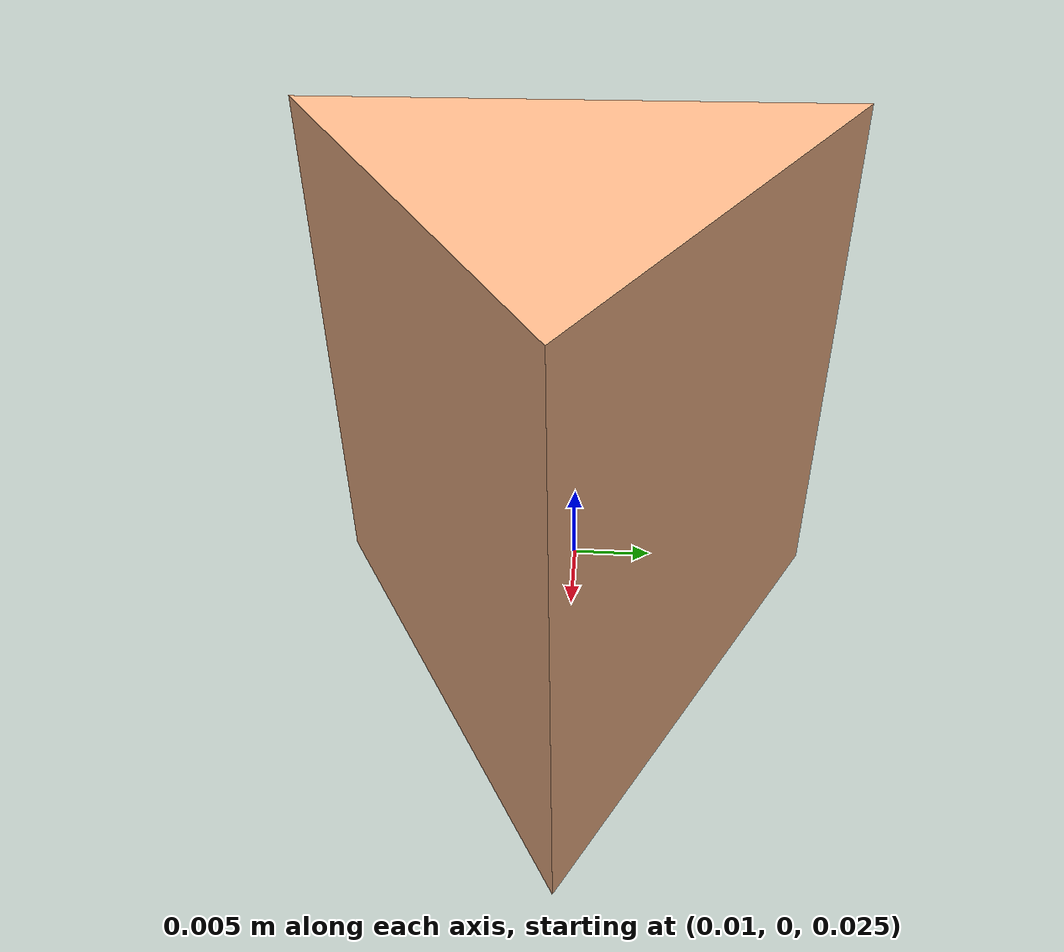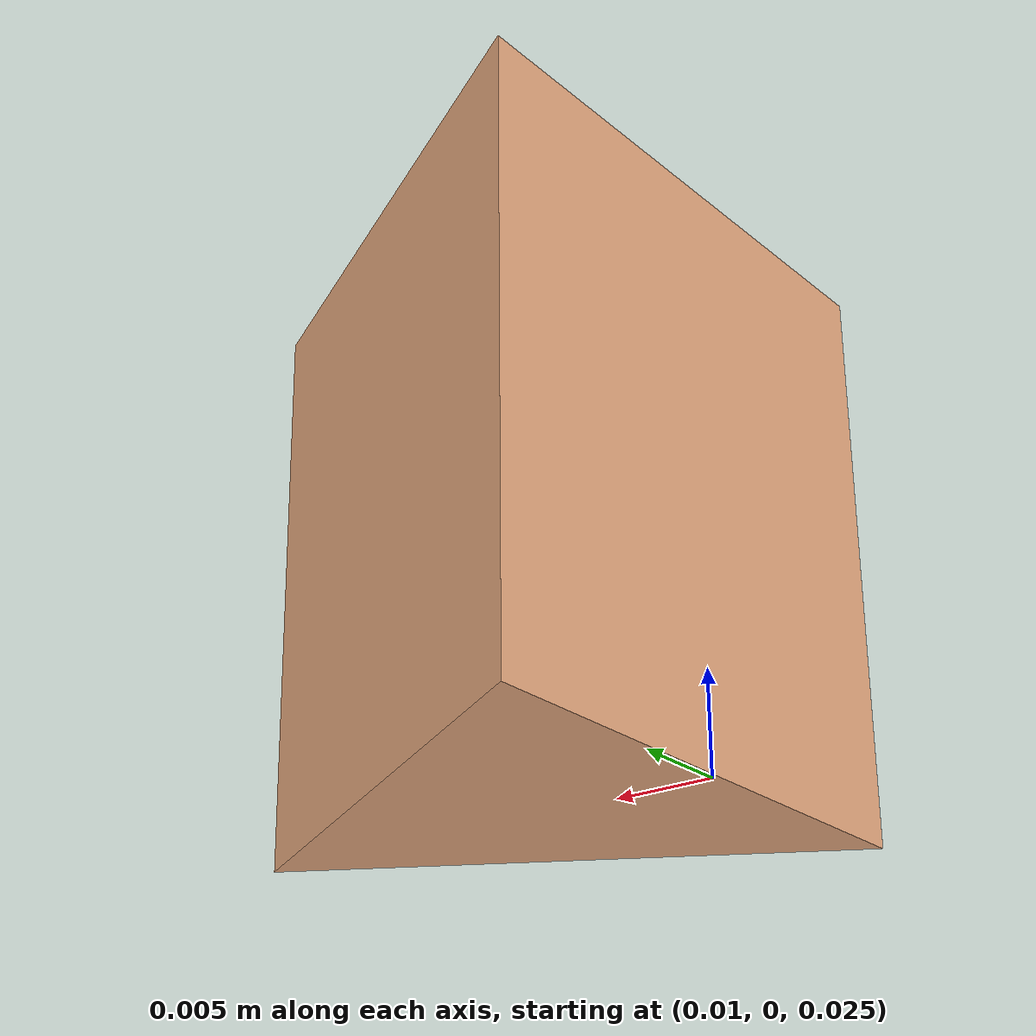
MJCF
<mujoco model="montessori_object_2">
    <compiler angle="radian" meshdir="." autolimits="true" inertiafromgeom="true"/>
    <asset>
        <mesh name="MontessoriObject_002" file="stl/MontessoriObject_002.stl" />
    </asset>
    <default>
        <default class="montessori_object_2_collision">
            <geom rgba="0.99 0.73 0.55 1.0"/>
        </default>
    </default>
    <worldbody>
        <body name="montessori_object_2" pos="0.0185 0 0.04" quat="1 0 0 0">
            <freejoint/>
            <inertial mass="0.01134409662336111" pos="0.0 0.0 0.0" quat="1.0 0.0 0.0 0.0" diaginertia="1.2508141935541062e-06 1.2508141935541062e-06 8.338761290360708e-07"/>
			<geom name="MontessoriObject2" type="mesh" mesh="MontessoriObject_002" class="montessori_object_2_collision"/>
        </body>
    </worldbody>
</mujoco>
